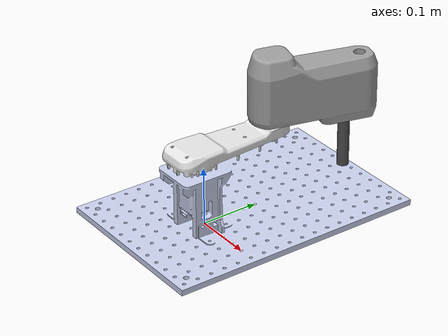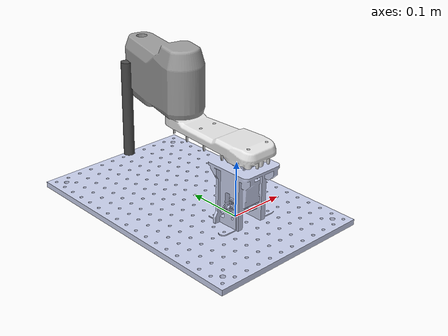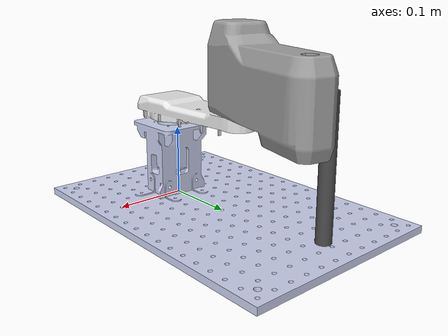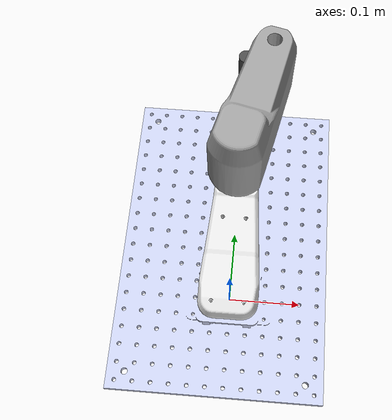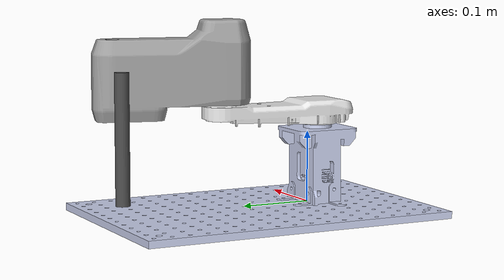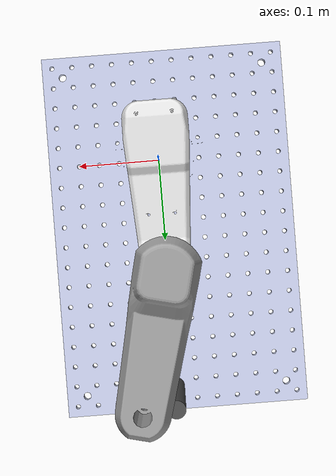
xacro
<?xml version="1.0"?>
<robot name="scara" xmlns:xacro="http://www.ros.org/wiki/xacro">

  <material name="grey">      <color rgba="0.79216 0.81961 0.93333 1"/> </material>
  <material name="light_grey"><color rgba="0.898 0.898 0.898 1"/> </material>
  <material name="mid_grey">  <color rgba="0.627 0.627 0.627 1"/> </material>
  <material name="dark_grey"> <color rgba="0.3 0.3 0.3 1"/> </material>

  <xacro:property name="mesh_pkg" value="package://scara_sim/meshes"/>

  <!-- ===================== world + base ===================== -->
  <link name="world"/>

  <joint name="world_to_base" type="fixed">
    <parent link="world"/><child link="base_link"/>
    <origin xyz="0 0 0" rpy="0 0 0"/>
  </joint>

  <link name="base_link">
    <inertial>
      <origin xyz="-0.010371 0.070225 0.0075664" rpy="0 0 0"/>
      <mass value="1.5527"/>
      <inertia ixx="0.021844" ixy="5.164E-08" ixz="-1.9194E-08"
               iyy="0.0098114" iyz="-9.3913E-07" izz="0.03138"/>
    </inertial>
    <visual>
      <origin xyz="0 0 0" rpy="0 0 0"/>
      <geometry><mesh filename="${mesh_pkg}/base_link.STL"/></geometry>
      <material name="grey"/>
    </visual>
    <collision>
      <origin xyz="0 0 0" rpy="0 0 0"/>
      <geometry><mesh filename="${mesh_pkg}/base_link.STL"/></geometry>
    </collision>
  </link>

  <!-- ===================== link_0 (upper arm) ===================== -->
  <link name="link_0">
    <inertial>
      <origin xyz="-6.98e-07 0.05208 0.01466" rpy="0 0 0"/>
      <mass value="0.578759"/>
      <inertia ixx="0.001779" ixy="3.13E-08" ixz="-8.0E-10"
               iyy="0.000130" iyz="2.03E-07" izz="0.001890"/>
    </inertial>
    <visual>
      <origin xyz="0 0 0" rpy="0 0 0"/>
      <geometry><mesh filename="${mesh_pkg}/link_0.STL"/></geometry>
      <material name="light_grey"/>
    </visual>
    <collision>
      <origin xyz="0 0 0" rpy="0 0 0"/>
      <geometry><mesh filename="${mesh_pkg}/link_0.STL"/></geometry>
    </collision>
  </link>

  <!-- joint_0: base_link -> link_0 (EXACT from new SW export) -->
  <joint name="joint_0" type="revolute">
    <origin xyz="0 -0.016 0.11125" rpy="0 0 0"/>
    <parent link="base_link"/><child link="link_0"/>
    <axis xyz="0 0 -1"/>
    <limit lower="-3.14159" upper="3.14159" effort="100" velocity="3.14"/>
    <dynamics damping="0.5" friction="0.1"/>
  </joint>

  <!-- ===================== link_1 (forearm) ===================== -->
  <link name="link_1">
    <inertial>
      <origin xyz="0.01468 0.06020 0.04343" rpy="0 0 0"/>
      <mass value="1.44327"/>
      <inertia ixx="0.006026" ixy="-0.001045" ixz="0.000166"
               iyy="0.001997" iyz="0.000681" izz="0.005452"/>
    </inertial>
    <visual>
      <origin xyz="0 0 0" rpy="0 0 0"/>
      <geometry><mesh filename="${mesh_pkg}/link_1.STL"/></geometry>
      <material name="mid_grey"/>
    </visual>
    <collision>
      <origin xyz="0 0 0" rpy="0 0 0"/>
      <geometry><mesh filename="${mesh_pkg}/link_1.STL"/></geometry>
    </collision>
  </link>

  <!-- joint_1: link_0 -> link_1 (EXACT from new SW export) -->
  <joint name="joint_1" type="revolute">
    <origin xyz="0 0.15 0.034" rpy="0 0 0"/>
    <parent link="link_0"/><child link="link_1"/>
    <axis xyz="0 0 1"/>
    <limit lower="-3.14159" upper="3.14159" effort="100" velocity="3.14"/>
    <dynamics damping="0.5" friction="0.1"/>
  </joint>

  <!-- ===================== link_2 (spindle - prismatic) ===================== -->
  <link name="link_2">
    <inertial>
      <origin xyz="0 0 -0.04" rpy="0 0 0"/>
      <mass value="0.1"/>
      <inertia ixx="0.0001" ixy="0" ixz="0" iyy="0.0001" iyz="0" izz="0.0001"/>
    </inertial>
    <visual>
      <origin xyz="0 0 -0.04" rpy="0 0 0"/>
      <geometry><cylinder radius="0.01" length="0.18"/></geometry>
      <material name="dark_grey"/>
    </visual>
    <collision>
      <origin xyz="0 0 -0.04" rpy="0 0 0"/>
      <geometry><cylinder radius="0.01" length="0.18"/></geometry>
    </collision>
  </link>

  <!-- joint_2: prismatic spindle (positioned at the end of link_1) -->
  <joint name="joint_2" type="prismatic">
    <origin xyz="0 0.147 0" rpy="0 0 0"/>
    <parent link="link_1"/><child link="link_2"/>
    <axis xyz="0 0 -1"/>
    <limit lower="0.0" upper="0.105" effort="100" velocity="0.1"/>
    <dynamics damping="10.0" friction="1.0"/>
  </joint>

  <link name="end_effector_link"/>
  <joint name="end_effector_joint" type="fixed">
    <origin xyz="0 0 -0.06" rpy="0 0 0"/>
    <parent link="link_2"/><child link="end_effector_link"/>
  </joint>

  <!-- ===================== ros2_control (mock hardware) ===================== -->
  <ros2_control name="ScaraSystem" type="system">
    <hardware>
      <plugin>mock_components/GenericSystem</plugin>
    </hardware>
    <joint name="joint_0">
      <command_interface name="position"/>
      <state_interface name="position"><param name="initial_value">0.0</param></state_interface>
      <state_interface name="velocity"/>
    </joint>
    <joint name="joint_1">
      <command_interface name="position"/>
      <state_interface name="position"><param name="initial_value">0.0</param></state_interface>
      <state_interface name="velocity"/>
    </joint>
    <joint name="joint_2">
      <command_interface name="position"/>
      <state_interface name="position"><param name="initial_value">0.0</param></state_interface>
      <state_interface name="velocity"/>
    </joint>
  </ros2_control>

</robot>
